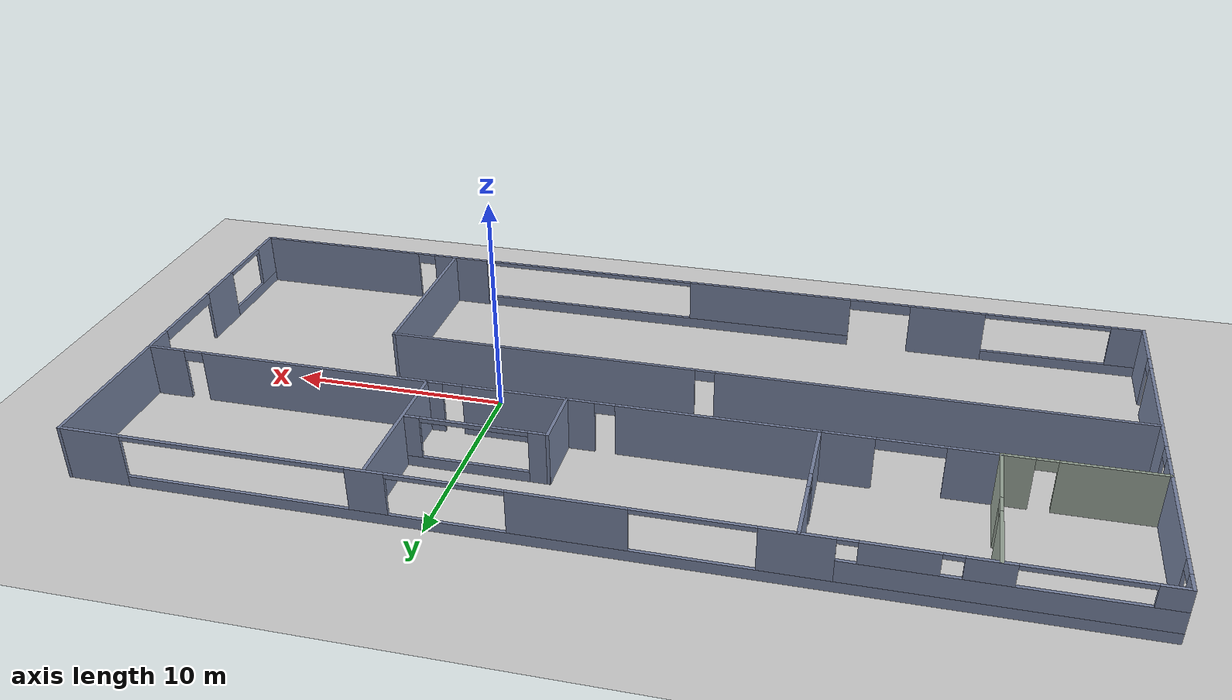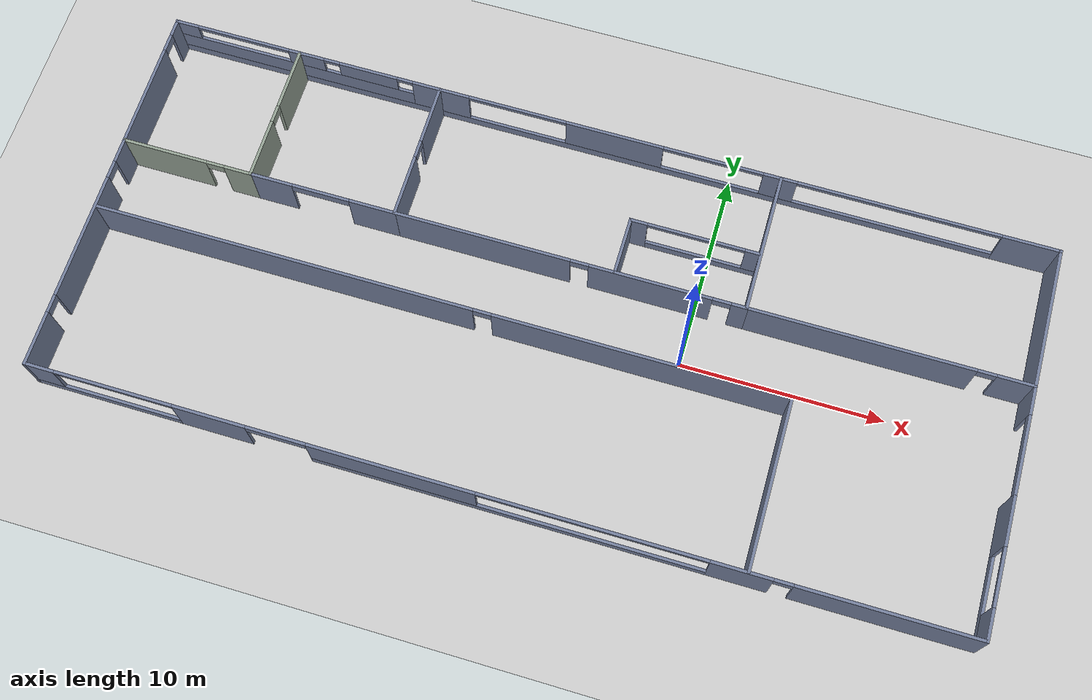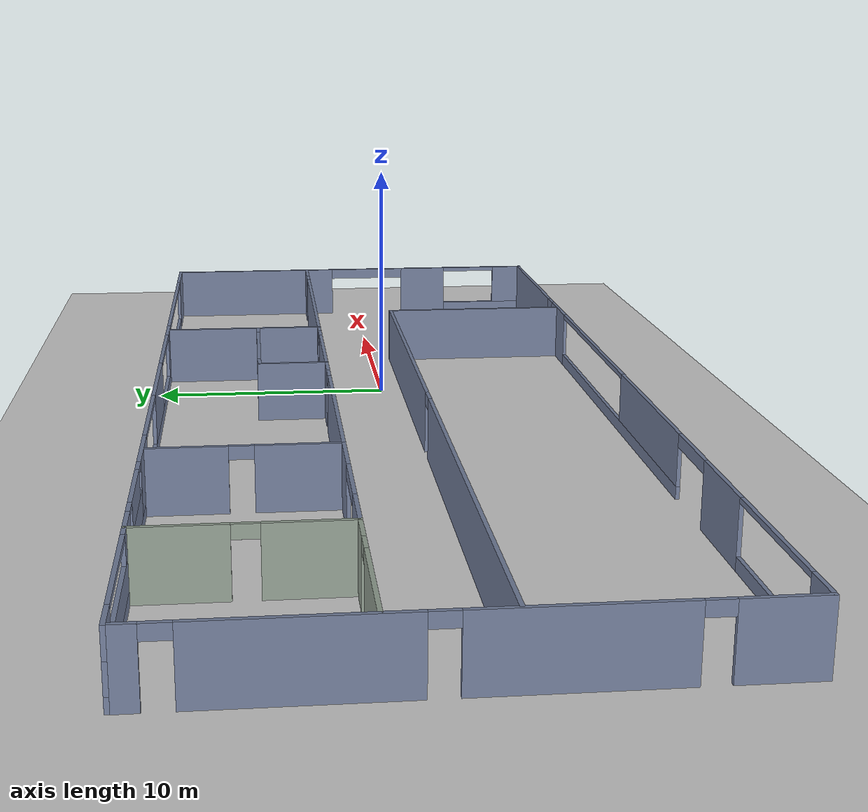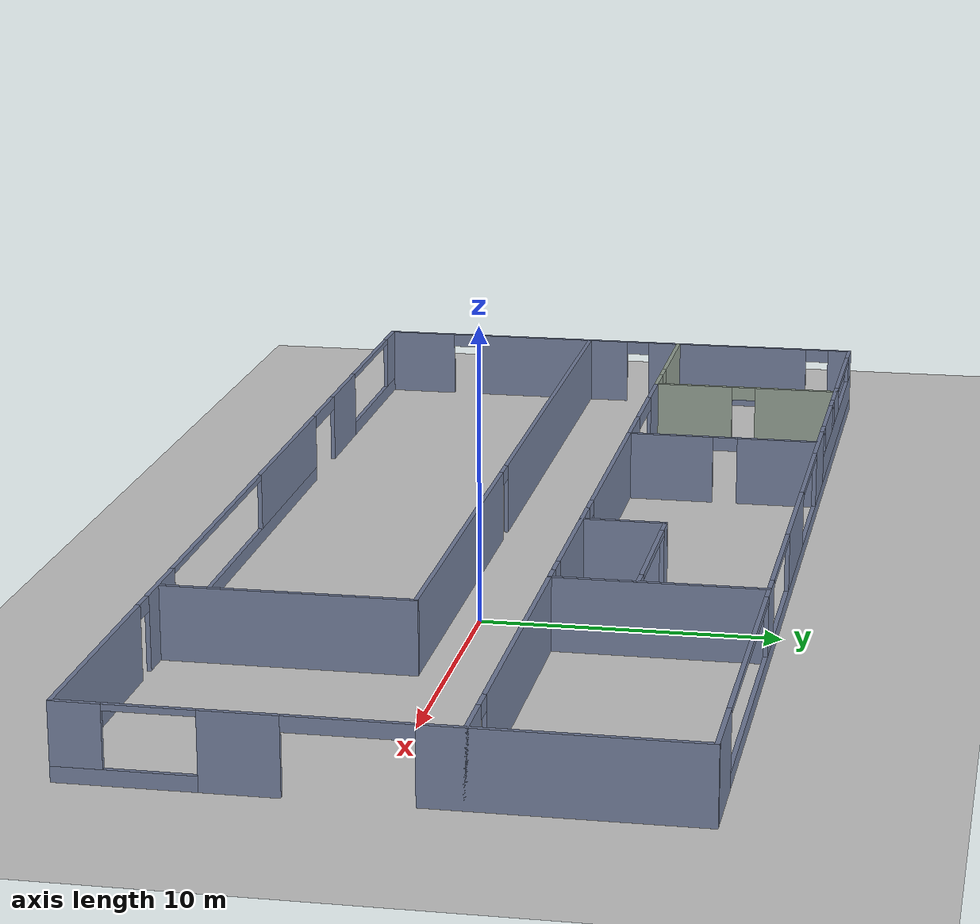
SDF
<sdf version="1.6">
 <world name="default">
  <model name="ground_plane">
   <static>1</static>
   <link name="link">
    <collision name="collision">
     <geometry><plane><normal>0 0 1</normal><size>100 100</size></plane></geometry>
     <surface><friction><ode><mu>100</mu><mu2>50</mu2></ode></friction></surface>
    </collision>
    <visual name="visual">
     <cast_shadows>0</cast_shadows>
     <geometry><plane><normal>0 0 1</normal><size>100 100</size></plane></geometry>
     <material>
      <script><uri>file://media/materials/scripts/gazebo.material</uri><name>Gazebo/Grey</name></script>
     </material>
    </visual>
   </link>
  </model>
  <model name="RnDBuilding">
   <pose>-6.4316 0.205557 0 0 -0 0</pose>
   <link name="Wall_0">
    <pose>22.425 0 0 0 0 -1.5708</pose>
    <visual name="Wall_0_Visual_0">
     <pose>-5.35844 0 1.25 0 -0 0</pose>
     <geometry><box><size>8.53312 0.15 2.5</size></box></geometry>
     <material>
      <script><uri>file://media/materials/scripts/gazebo.material</uri><name>Gazebo/Grey</name></script>
      <ambient>0.45098 0.498039 0.611765 1</ambient>
     </material>
     <meta><layer>0</layer></meta>
    </visual>
    <collision name="Wall_0_Collision_0">
     <geometry><box><size>8.53312 0.15 2.5</size></box></geometry>
     <pose>-5.35844 0 1.25 0 -0 0</pose>
    </collision>
    <visual name="Wall_0_Visual_1">
     <pose>4.02226 0 1.25 0 -0 0</pose>
     <geometry><box><size>2.42827 0.15 2.5</size></box></geometry>
     <material>
      <script><uri>file://media/materials/scripts/gazebo.material</uri><name>Gazebo/Grey</name></script>
      <ambient>0.45098 0.498039 0.611765 1</ambient>
     </material>
     <meta><layer>0</layer></meta>
    </visual>
    <collision name="Wall_0_Collision_1">
     <geometry><box><size>2.42827 0.15 2.5</size></box></geometry>
     <pose>4.02226 0 1.25 0 -0 0</pose>
    </collision>
    <visual name="Wall_0_Visual_2">
     <pose>7.4307 0 0.25 0 -0 0</pose>
     <geometry><box><size>4.38861 0.15 0.5</size></box></geometry>
     <material>
      <script><uri>file://media/materials/scripts/gazebo.material</uri><name>Gazebo/Grey</name></script>
      <ambient>0.45098 0.498039 0.611765 1</ambient>
     </material>
     <meta><layer>0</layer></meta>
    </visual>
    <collision name="Wall_0_Collision_2">
     <geometry><box><size>4.38861 0.15 0.5</size></box></geometry>
     <pose>7.4307 0 0.25 0 -0 0</pose>
    </collision>
    <visual name="Wall_0_Visual_3">
     <pose>8.8307 0 1.5 0 -0 0</pose>
     <geometry><box><size>1.58861 0.15 2</size></box></geometry>
     <material>
      <script><uri>file://media/materials/scripts/gazebo.material</uri><name>Gazebo/Grey</name></script>
      <ambient>0.45098 0.498039 0.611765 1</ambient>
     </material>
     <meta><layer>0</layer></meta>
    </visual>
    <collision name="Wall_0_Collision_3">
     <geometry><box><size>1.58861 0.15 2</size></box></geometry>
     <pose>8.8307 0 1.5 0 -0 0</pose>
    </collision>
    <visual name="Wall_0_Visual_4">
     <pose>0.858122 0 2.25 0 -0 0</pose>
     <geometry><box><size>3.9 0.15 0.5</size></box></geometry>
     <material>
      <script><uri>file://media/materials/scripts/gazebo.material</uri><name>Gazebo/Grey</name></script>
      <ambient>0.45098 0.498039 0.611765 1</ambient>
     </material>
     <meta><layer>0</layer></meta>
    </visual>
    <collision name="Wall_0_Collision_4">
     <geometry><box><size>3.9 0.15 0.5</size></box></geometry>
     <pose>0.858122 0 2.25 0 -0 0</pose>
    </collision>
    <visual name="Wall_0_Visual_5">
     <pose>6.63639 0 2.4 0 -0 0</pose>
     <geometry><box><size>2.8 0.15 0.2</size></box></geometry>
     <material>
      <script><uri>file://media/materials/scripts/gazebo.material</uri><name>Gazebo/Grey</name></script>
      <ambient>0.45098 0.498039 0.611765 1</ambient>
     </material>
     <meta><layer>0</layer></meta>
    </visual>
    <collision name="Wall_0_Collision_5">
     <geometry><box><size>2.8 0.15 0.2</size></box></geometry>
     <pose>6.63639 0 2.4 0 -0 0</pose>
    </collision>
   </link>
   <link name="Wall_1">
    <pose>0 -9.55 0 0 -0 3.14159</pose>
    <visual name="Wall_1_Visual_0">
     <pose>-18.1979 0 1.25 0 -0 0</pose>
     <geometry><box><size>8.60412 0.15 2.5</size></box></geometry>
     <material>
      <script><uri>file://media/materials/scripts/gazebo.material</uri><name>Gazebo/Grey</name></script>
      <ambient>0.45098 0.498039 0.611765 1</ambient>
     </material>
     <meta><layer>0</layer></meta>
    </visual>
    <collision name="Wall_1_Collision_0">
     <geometry><box><size>8.60412 0.15 2.5</size></box></geometry>
     <pose>-18.1979 0 1.25 0 -0 0</pose>
    </collision>
    <visual name="Wall_1_Visual_1">
     <pose>-11.5611 0 1.25 0 -0 0</pose>
     <geometry><box><size>2.86961 0.15 2.5</size></box></geometry>
     <material>
      <script><uri>file://media/materials/scripts/gazebo.material</uri><name>Gazebo/Grey</name></script>
      <ambient>0.45098 0.498039 0.611765 1</ambient>
     </material>
     <meta><layer>0</layer></meta>
    </visual>
    <collision name="Wall_1_Collision_1">
     <geometry><box><size>2.86961 0.15 2.5</size></box></geometry>
     <pose>-11.5611 0 1.25 0 -0 0</pose>
    </collision>
    <visual name="Wall_1_Visual_2">
     <pose>13.3816 0 1.25 0 -0 0</pose>
     <geometry><box><size>3.56837 0.15 2.5</size></box></geometry>
     <material>
      <script><uri>file://media/materials/scripts/gazebo.material</uri><name>Gazebo/Grey</name></script>
      <ambient>0.45098 0.498039 0.611765 1</ambient>
     </material>
     <meta><layer>0</layer></meta>
    </visual>
    <collision name="Wall_1_Collision_2">
     <geometry><box><size>3.56837 0.15 2.5</size></box></geometry>
     <pose>13.3816 0 1.25 0 -0 0</pose>
    </collision>
    <visual name="Wall_1_Visual_3">
     <pose>-0.714424 0 0.25 0 -0 0</pose>
     <geometry><box><size>18.8237 0.15 0.5</size></box></geometry>
     <material>
      <script><uri>file://media/materials/scripts/gazebo.material</uri><name>Gazebo/Grey</name></script>
      <ambient>0.45098 0.498039 0.611765 1</ambient>
     </material>
     <meta><layer>0</layer></meta>
    </visual>
    <collision name="Wall_1_Collision_3">
     <geometry><box><size>18.8237 0.15 0.5</size></box></geometry>
     <pose>-0.714424 0 0.25 0 -0 0</pose>
    </collision>
    <visual name="Wall_1_Visual_4">
     <pose>18.8329 0 0.25 0 -0 0</pose>
     <geometry><box><size>7.33421 0.15 0.5</size></box></geometry>
     <material>
      <script><uri>file://media/materials/scripts/gazebo.material</uri><name>Gazebo/Grey</name></script>
      <ambient>0.45098 0.498039 0.611765 1</ambient>
     </material>
     <meta><layer>0</layer></meta>
    </visual>
    <collision name="Wall_1_Collision_4">
     <geometry><box><size>7.33421 0.15 0.5</size></box></geometry>
     <pose>18.8329 0 0.25 0 -0 0</pose>
    </collision>
    <visual name="Wall_1_Visual_5">
     <pose>4.68558 0 1.5 0 -0 0</pose>
     <geometry><box><size>8.0237 0.15 2</size></box></geometry>
     <material>
      <script><uri>file://media/materials/scripts/gazebo.material</uri><name>Gazebo/Grey</name></script>
      <ambient>0.45098 0.498039 0.611765 1</ambient>
     </material>
     <meta><layer>0</layer></meta>
    </visual>
    <collision name="Wall_1_Collision_5">
     <geometry><box><size>8.0237 0.15 2</size></box></geometry>
     <pose>4.68558 0 1.5 0 -0 0</pose>
    </collision>
    <visual name="Wall_1_Visual_6">
     <pose>4.68558 0 1.5 0 -0 0</pose>
     <geometry><box><size>8.0237 0.15 2</size></box></geometry>
     <material>
      <script><uri>file://media/materials/scripts/gazebo.material</uri><name>Gazebo/Grey</name></script>
      <ambient>0.45098 0.498039 0.611765 1</ambient>
     </material>
     <meta><layer>0</layer></meta>
    </visual>
    <collision name="Wall_1_Collision_6">
     <geometry><box><size>8.0237 0.15 2</size></box></geometry>
     <pose>4.68558 0 1.5 0 -0 0</pose>
    </collision>
    <visual name="Wall_1_Visual_7">
     <pose>21.7329 0 1.5 0 -0 0</pose>
     <geometry><box><size>1.53421 0.15 2</size></box></geometry>
     <material>
      <script><uri>file://media/materials/scripts/gazebo.material</uri><name>Gazebo/Grey</name></script>
      <ambient>0.45098 0.498039 0.611765 1</ambient>
     </material>
     <meta><layer>0</layer></meta>
    </visual>
    <collision name="Wall_1_Collision_7">
     <geometry><box><size>1.53421 0.15 2</size></box></geometry>
     <pose>21.7329 0 1.5 0 -0 0</pose>
    </collision>
    <visual name="Wall_1_Visual_8">
     <pose>-13.4459 0 2.25 0 -0 0</pose>
     <geometry><box><size>0.9 0.15 0.5</size></box></geometry>
     <material>
      <script><uri>file://media/materials/scripts/gazebo.material</uri><name>Gazebo/Grey</name></script>
      <ambient>0.45098 0.498039 0.611765 1</ambient>
     </material>
     <meta><layer>0</layer></meta>
    </visual>
    <collision name="Wall_1_Collision_8">
     <geometry><box><size>0.9 0.15 0.5</size></box></geometry>
     <pose>-13.4459 0 2.25 0 -0 0</pose>
    </collision>
    <visual name="Wall_1_Visual_9">
     <pose>10.1474 0 2.25 0 -0 0</pose>
     <geometry><box><size>2.9 0.15 0.5</size></box></geometry>
     <material>
      <script><uri>file://media/materials/scripts/gazebo.material</uri><name>Gazebo/Grey</name></script>
      <ambient>0.45098 0.498039 0.611765 1</ambient>
     </material>
     <meta><layer>0</layer></meta>
    </visual>
    <collision name="Wall_1_Collision_9">
     <geometry><box><size>2.9 0.15 0.5</size></box></geometry>
     <pose>10.1474 0 2.25 0 -0 0</pose>
    </collision>
    <visual name="Wall_1_Visual_10">
     <pose>10.1474 0 2.25 0 -0 0</pose>
     <geometry><box><size>2.9 0.15 0.5</size></box></geometry>
     <material>
      <script><uri>file://media/materials/scripts/gazebo.material</uri><name>Gazebo/Grey</name></script>
      <ambient>0.45098 0.498039 0.611765 1</ambient>
     </material>
     <meta><layer>0</layer></meta>
    </visual>
    <collision name="Wall_1_Collision_10">
     <geometry><box><size>2.9 0.15 0.5</size></box></geometry>
     <pose>10.1474 0 2.25 0 -0 0</pose>
    </collision>
    <visual name="Wall_1_Visual_11">
     <pose>-4.72627 0 2.4 0 -0 0</pose>
     <geometry><box><size>10.8 0.15 0.2</size></box></geometry>
     <material>
      <script><uri>file://media/materials/scripts/gazebo.material</uri><name>Gazebo/Grey</name></script>
      <ambient>0.45098 0.498039 0.611765 1</ambient>
     </material>
     <meta><layer>0</layer></meta>
    </visual>
    <collision name="Wall_1_Collision_11">
     <geometry><box><size>10.8 0.15 0.2</size></box></geometry>
     <pose>-4.72627 0 2.4 0 -0 0</pose>
    </collision>
    <visual name="Wall_1_Visual_12">
     <pose>18.0658 0 2.4 0 -0 0</pose>
     <geometry><box><size>5.8 0.15 0.2</size></box></geometry>
     <material>
      <script><uri>file://media/materials/scripts/gazebo.material</uri><name>Gazebo/Grey</name></script>
      <ambient>0.45098 0.498039 0.611765 1</ambient>
     </material>
     <meta><layer>0</layer></meta>
    </visual>
    <collision name="Wall_1_Collision_12">
     <geometry><box><size>5.8 0.15 0.2</size></box></geometry>
     <pose>18.0658 0 2.4 0 -0 0</pose>
    </collision>
   </link>
   <link name="Wall_14">
    <collision name="Wall_14_Collision">
     <geometry><box><size>7.15 0.15 2.5</size></box></geometry>
     <pose>0 0 1.25 0 -0 0</pose>
    </collision>
    <visual name="Wall_14_Visual">
     <pose>0 0 1.25 0 -0 0</pose>
     <geometry><box><size>7.15 0.15 2.5</size></box></geometry>
     <material>
      <script><uri>file://media/materials/scripts/gazebo.material</uri><name>Gazebo/Grey</name></script>
      <ambient>0.45098 0.498039 0.611765 1</ambient>
     </material>
     <meta><layer>0</layer></meta>
    </visual>
    <pose>8.825 6.02489 0 0 -0 1.5708</pose>
   </link>
   <link name="Wall_16">
    <pose>0.15 2.52489 0 0 -0 3.14159</pose>
    <visual name="Wall_16_Visual_0">
     <pose>-8.3402 0 1.25 0 -0 0</pose>
     <geometry><box><size>0.819604 0.15 2.5</size></box></geometry>
     <material>
      <script><uri>file://media/materials/scripts/gazebo.material</uri><name>Gazebo/Grey</name></script>
      <ambient>0.45098 0.498039 0.611765 1</ambient>
     </material>
     <meta><layer>0</layer></meta>
    </visual>
    <collision name="Wall_16_Collision_0">
     <geometry><box><size>0.819604 0.15 2.5</size></box></geometry>
     <pose>-8.3402 0 1.25 0 -0 0</pose>
    </collision>
    <visual name="Wall_16_Visual_1">
     <pose>-4.01436 0 1.25 0 -0 0</pose>
     <geometry><box><size>6.03206 0.15 2.5</size></box></geometry>
     <material>
      <script><uri>file://media/materials/scripts/gazebo.material</uri><name>Gazebo/Grey</name></script>
      <ambient>0.45098 0.498039 0.611765 1</ambient>
     </material>
     <meta><layer>0</layer></meta>
    </visual>
    <collision name="Wall_16_Collision_1">
     <geometry><box><size>6.03206 0.15 2.5</size></box></geometry>
     <pose>-4.01436 0 1.25 0 -0 0</pose>
    </collision>
    <visual name="Wall_16_Visual_2">
     <pose>4.32583 0 1.25 0 -0 0</pose>
     <geometry><box><size>8.84833 0.15 2.5</size></box></geometry>
     <material>
      <script><uri>file://media/materials/scripts/gazebo.material</uri><name>Gazebo/Grey</name></script>
      <ambient>0.45098 0.498039 0.611765 1</ambient>
     </material>
     <meta><layer>0</layer></meta>
    </visual>
    <collision name="Wall_16_Collision_2">
     <geometry><box><size>8.84833 0.15 2.5</size></box></geometry>
     <pose>4.32583 0 1.25 0 -0 0</pose>
    </collision>
    <visual name="Wall_16_Visual_3">
     <pose>-7.4804 0 2.25 0 -0 0</pose>
     <geometry><box><size>0.9 0.15 0.5</size></box></geometry>
     <material>
      <script><uri>file://media/materials/scripts/gazebo.material</uri><name>Gazebo/Grey</name></script>
      <ambient>0.45098 0.498039 0.611765 1</ambient>
     </material>
     <meta><layer>0</layer></meta>
    </visual>
    <collision name="Wall_16_Collision_3">
     <geometry><box><size>0.9 0.15 0.5</size></box></geometry>
     <pose>-7.4804 0 2.25 0 -0 0</pose>
    </collision>
    <visual name="Wall_16_Visual_4">
     <pose>-0.548333 0 2.25 0 -0 0</pose>
     <geometry><box><size>0.9 0.15 0.5</size></box></geometry>
     <material>
      <script><uri>file://media/materials/scripts/gazebo.material</uri><name>Gazebo/Grey</name></script>
      <ambient>0.45098 0.498039 0.611765 1</ambient>
     </material>
     <meta><layer>0</layer></meta>
    </visual>
    <collision name="Wall_16_Collision_4">
     <geometry><box><size>0.9 0.15 0.5</size></box></geometry>
     <pose>-0.548333 0 2.25 0 -0 0</pose>
    </collision>
   </link>
   <link name="Wall_17">
    <pose>-8.525 6.02489 0 0 -0 1.5708</pose>
    <visual name="Wall_17_Visual_0">
     <pose>-1.97133 0 1.25 0 -0 0</pose>
     <geometry><box><size>3.20734 0.15 2.5</size></box></geometry>
     <material>
      <script><uri>file://media/materials/scripts/gazebo.material</uri><name>Gazebo/Grey</name></script>
      <ambient>0.45098 0.498039 0.611765 1</ambient>
     </material>
     <meta><layer>0</layer></meta>
    </visual>
    <collision name="Wall_17_Collision_0">
     <geometry><box><size>3.20734 0.15 2.5</size></box></geometry>
     <pose>-1.97133 0 1.25 0 -0 0</pose>
    </collision>
    <visual name="Wall_17_Visual_1">
     <pose>2.05367 0 1.25 0 -0 0</pose>
     <geometry><box><size>3.04266 0.15 2.5</size></box></geometry>
     <material>
      <script><uri>file://media/materials/scripts/gazebo.material</uri><name>Gazebo/Grey</name></script>
      <ambient>0.45098 0.498039 0.611765 1</ambient>
     </material>
     <meta><layer>0</layer></meta>
    </visual>
    <collision name="Wall_17_Collision_1">
     <geometry><box><size>3.04266 0.15 2.5</size></box></geometry>
     <pose>2.05367 0 1.25 0 -0 0</pose>
    </collision>
    <visual name="Wall_17_Visual_2">
     <pose>0.082341 0 2.25 0 -0 0</pose>
     <geometry><box><size>0.9 0.15 0.5</size></box></geometry>
     <material>
      <script><uri>file://media/materials/scripts/gazebo.material</uri><name>Gazebo/Grey</name></script>
      <ambient>0.45098 0.498039 0.611765 1</ambient>
     </material>
     <meta><layer>0</layer></meta>
    </visual>
    <collision name="Wall_17_Collision_2">
     <geometry><box><size>0.9 0.15 0.5</size></box></geometry>
     <pose>0.082341 0 2.25 0 -0 0</pose>
    </collision>
   </link>
   <link name="Wall_19">
    <collision name="Wall_19_Collision">
     <geometry><box><size>3 0.15 2.5</size></box></geometry>
     <pose>0 0 1.25 0 -0 0</pose>
    </collision>
    <visual name="Wall_19_Visual">
     <pose>0 0 1.25 0 -0 0</pose>
     <geometry><box><size>3 0.15 2.5</size></box></geometry>
     <material>
      <script><uri>file://media/materials/scripts/gazebo.material</uri><name>Gazebo/Grey</name></script>
      <ambient>0.45098 0.498039 0.611765 1</ambient>
     </material>
     <meta><layer>0</layer></meta>
    </visual>
    <pose>2.41972 3.94989 0 0 -0 1.5708</pose>
   </link>
   <link name="Wall_20">
    <pose>5.59472 5.37489 0 0 -0 0</pose>
    <visual name="Wall_20_Visual_0">
     <pose>-2.79096 0 1.25 0 -0 0</pose>
     <geometry><box><size>0.918074 0.15 2.5</size></box></geometry>
     <material>
      <script><uri>file://media/materials/scripts/gazebo.material</uri><name>Gazebo/Grey</name></script>
      <ambient>0.45098 0.498039 0.611765 1</ambient>
     </material>
     <meta><layer>0</layer></meta>
    </visual>
    <collision name="Wall_20_Collision_0">
     <geometry><box><size>0.918074 0.15 2.5</size></box></geometry>
     <pose>-2.79096 0 1.25 0 -0 0</pose>
    </collision>
    <visual name="Wall_20_Visual_1">
     <pose>0.459037 0 0.25 0 -0 0</pose>
     <geometry><box><size>5.58193 0.15 0.5</size></box></geometry>
     <material>
      <script><uri>file://media/materials/scripts/gazebo.material</uri><name>Gazebo/Grey</name></script>
      <ambient>0.45098 0.498039 0.611765 1</ambient>
     </material>
     <meta><layer>0</layer></meta>
    </visual>
    <collision name="Wall_20_Collision_1">
     <geometry><box><size>5.58193 0.15 0.5</size></box></geometry>
     <pose>0.459037 0 0.25 0 -0 0</pose>
    </collision>
    <visual name="Wall_20_Visual_2">
     <pose>2.85904 0 1.5 0 -0 0</pose>
     <geometry><box><size>0.781926 0.15 2</size></box></geometry>
     <material>
      <script><uri>file://media/materials/scripts/gazebo.material</uri><name>Gazebo/Grey</name></script>
      <ambient>0.45098 0.498039 0.611765 1</ambient>
     </material>
     <meta><layer>0</layer></meta>
    </visual>
    <collision name="Wall_20_Collision_2">
     <geometry><box><size>0.781926 0.15 2</size></box></geometry>
     <pose>2.85904 0 1.5 0 -0 0</pose>
    </collision>
    <visual name="Wall_20_Visual_3">
     <pose>0.068074 0 2.4 0 -0 0</pose>
     <geometry><box><size>4.8 0.15 0.2</size></box></geometry>
     <material>
      <script><uri>file://media/materials/scripts/gazebo.material</uri><name>Gazebo/Grey</name></script>
      <ambient>0.45098 0.498039 0.611765 1</ambient>
     </material>
     <meta><layer>0</layer></meta>
    </visual>
    <collision name="Wall_20_Collision_3">
     <geometry><box><size>4.8 0.15 0.2</size></box></geometry>
     <pose>0.068074 0 2.4 0 -0 0</pose>
    </collision>
   </link>
   <link name="Wall_22">
    <pose>-12.2 2.52489 0 0 -0 3.14159</pose>
    <visual name="Wall_22_Visual_0">
     <pose>-2.55908 0 1.25 0 -0 0</pose>
     <geometry><box><size>2.38184 0.15 2.5</size></box></geometry>
     <material>
      <script><uri>file://media/materials/scripts/gazebo.material</uri><name>Gazebo/Grey</name></script>
      <ambient>0.45098 0.498039 0.611765 1</ambient>
     </material>
     <meta><layer>0</layer></meta>
    </visual>
    <collision name="Wall_22_Collision_0">
     <geometry><box><size>2.38184 0.15 2.5</size></box></geometry>
     <pose>-2.55908 0 1.25 0 -0 0</pose>
    </collision>
    <visual name="Wall_22_Visual_1">
     <pose>2.64092 0 1.25 0 -0 0</pose>
     <geometry><box><size>2.21816 0.15 2.5</size></box></geometry>
     <material>
      <script><uri>file://media/materials/scripts/gazebo.material</uri><name>Gazebo/Grey</name></script>
      <ambient>0.45098 0.498039 0.611765 1</ambient>
     </material>
     <meta><layer>0</layer></meta>
    </visual>
    <collision name="Wall_22_Collision_1">
     <geometry><box><size>2.21816 0.15 2.5</size></box></geometry>
     <pose>2.64092 0 1.25 0 -0 0</pose>
    </collision>
    <visual name="Wall_22_Visual_2">
     <pose>0.081841 0 2.25 0 -0 0</pose>
     <geometry><box><size>2.9 0.15 0.5</size></box></geometry>
     <material>
      <script><uri>file://media/materials/scripts/gazebo.material</uri><name>Gazebo/Grey</name></script>
      <ambient>0.45098 0.498039 0.611765 1</ambient>
     </material>
     <meta><layer>0</layer></meta>
    </visual>
    <collision name="Wall_22_Collision_2">
     <geometry><box><size>2.9 0.15 0.5</size></box></geometry>
     <pose>0.081841 0 2.25 0 -0 0</pose>
    </collision>
   </link>
   <link name="Wall_23">
    <pose>-15.875 6.02489 0 0 -0 1.5708</pose>
    <visual name="Wall_23_Visual_0">
     <pose>-2.04112 0 1.25 0 -0 0</pose>
     <geometry><box><size>3.06777 0.15 2.5</size></box></geometry>
     <material>
      <script><uri>file://media/materials/scripts/gazebo.material</uri><name>Gazebo/Grey</name></script>
      <ambient>0.580392 0.631373 0.580392 1</ambient>
     </material>
     <meta><layer>0</layer></meta>
    </visual>
    <collision name="Wall_23_Collision_0">
     <geometry><box><size>3.06777 0.15 2.5</size></box></geometry>
     <pose>-2.04112 0 1.25 0 -0 0</pose>
    </collision>
    <visual name="Wall_23_Visual_1">
     <pose>1.98388 0 1.25 0 -0 0</pose>
     <geometry><box><size>3.18223 0.15 2.5</size></box></geometry>
     <material>
      <script><uri>file://media/materials/scripts/gazebo.material</uri><name>Gazebo/Grey</name></script>
      <ambient>0.580392 0.631373 0.580392 1</ambient>
     </material>
     <meta><layer>0</layer></meta>
    </visual>
    <collision name="Wall_23_Collision_1">
     <geometry><box><size>3.18223 0.15 2.5</size></box></geometry>
     <pose>1.98388 0 1.25 0 -0 0</pose>
    </collision>
    <visual name="Wall_23_Visual_2">
     <pose>-0.05723 0 2.25 0 -0 0</pose>
     <geometry><box><size>0.9 0.15 0.5</size></box></geometry>
     <material>
      <script><uri>file://media/materials/scripts/gazebo.material</uri><name>Gazebo/Grey</name></script>
      <ambient>0.580392 0.631373 0.580392 1</ambient>
     </material>
     <meta><layer>0</layer></meta>
    </visual>
    <collision name="Wall_23_Collision_2">
     <geometry><box><size>0.9 0.15 0.5</size></box></geometry>
     <pose>-0.05723 0 2.25 0 -0 0</pose>
    </collision>
   </link>
   <link name="Wall_25">
    <pose>-19.125 2.52489 0 0 -0 3.14159</pose>
    <visual name="Wall_25_Visual_0">
     <pose>-2.61069 0 1.25 0 -0 0</pose>
     <geometry><box><size>1.42861 0.15 2.5</size></box></geometry>
     <material>
      <script><uri>file://media/materials/scripts/gazebo.material</uri><name>Gazebo/Grey</name></script>
      <ambient>0.580392 0.631373 0.580392 1</ambient>
     </material>
     <meta><layer>0</layer></meta>
    </visual>
    <collision name="Wall_25_Collision_0">
     <geometry><box><size>1.42861 0.15 2.5</size></box></geometry>
     <pose>-2.61069 0 1.25 0 -0 0</pose>
    </collision>
    <visual name="Wall_25_Visual_1">
     <pose>1.16431 0 1.25 0 -0 0</pose>
     <geometry><box><size>4.32139 0.15 2.5</size></box></geometry>
     <material>
      <script><uri>file://media/materials/scripts/gazebo.material</uri><name>Gazebo/Grey</name></script>
      <ambient>0.580392 0.631373 0.580392 1</ambient>
     </material>
     <meta><layer>0</layer></meta>
    </visual>
    <collision name="Wall_25_Collision_1">
     <geometry><box><size>4.32139 0.15 2.5</size></box></geometry>
     <pose>1.16431 0 1.25 0 -0 0</pose>
    </collision>
    <visual name="Wall_25_Visual_2">
     <pose>-1.44639 0 2.25 0 -0 0</pose>
     <geometry><box><size>0.9 0.15 0.5</size></box></geometry>
     <material>
      <script><uri>file://media/materials/scripts/gazebo.material</uri><name>Gazebo/Grey</name></script>
      <ambient>0.580392 0.631373 0.580392 1</ambient>
     </material>
     <meta><layer>0</layer></meta>
    </visual>
    <collision name="Wall_25_Collision_2">
     <geometry><box><size>0.9 0.15 0.5</size></box></geometry>
     <pose>-1.44639 0 2.25 0 -0 0</pose>
    </collision>
   </link>
   <link name="Wall_27">
    <collision name="Wall_27_Collision">
     <geometry><box><size>8.5 0.15 2.5</size></box></geometry>
     <pose>0 0 1.25 0 -0 0</pose>
    </collision>
    <visual name="Wall_27_Visual">
     <pose>0 0 1.25 0 -0 0</pose>
     <geometry><box><size>8.5 0.15 2.5</size></box></geometry>
     <material>
      <script><uri>file://media/materials/scripts/gazebo.material</uri><name>Gazebo/Grey</name></script>
      <ambient>0.45098 0.498039 0.611765 1</ambient>
     </material>
     <meta><layer>0</layer></meta>
    </visual>
    <pose>11.8641 -5.3498 0 0 -0 1.5708</pose>
   </link>
   <link name="Wall_28">
    <pose>-5.23593 -1.1748 0 0 -0 3.14159</pose>
    <visual name="Wall_28_Visual_0">
     <pose>-9.94194 0 1.25 0 -0 0</pose>
     <geometry><box><size>14.4661 0.15 2.5</size></box></geometry>
     <material>
      <script><uri>file://media/materials/scripts/gazebo.material</uri><name>Gazebo/Grey</name></script>
      <ambient>0.45098 0.498039 0.611765 1</ambient>
     </material>
     <meta><layer>0</layer></meta>
    </visual>
    <collision name="Wall_28_Collision_0">
     <geometry><box><size>14.4661 0.15 2.5</size></box></geometry>
     <pose>-9.94194 0 1.25 0 -0 0</pose>
    </collision>
    <visual name="Wall_28_Visual_1">
     <pose>7.68306 0 1.25 0 -0 0</pose>
     <geometry><box><size>18.9839 0.15 2.5</size></box></geometry>
     <material>
      <script><uri>file://media/materials/scripts/gazebo.material</uri><name>Gazebo/Grey</name></script>
      <ambient>0.45098 0.498039 0.611765 1</ambient>
     </material>
     <meta><layer>0</layer></meta>
    </visual>
    <collision name="Wall_28_Collision_1">
     <geometry><box><size>18.9839 0.15 2.5</size></box></geometry>
     <pose>7.68306 0 1.25 0 -0 0</pose>
    </collision>
    <visual name="Wall_28_Visual_2">
     <pose>-2.25887 0 2.25 0 -0 0</pose>
     <geometry><box><size>0.9 0.15 0.5</size></box></geometry>
     <material>
      <script><uri>file://media/materials/scripts/gazebo.material</uri><name>Gazebo/Grey</name></script>
      <ambient>0.45098 0.498039 0.611765 1</ambient>
     </material>
     <meta><layer>0</layer></meta>
    </visual>
    <collision name="Wall_28_Collision_2">
     <geometry><box><size>0.9 0.15 0.5</size></box></geometry>
     <pose>-2.25887 0 2.25 0 -0 0</pose>
    </collision>
   </link>
   <link name="Wall_5">
    <pose>0 9.55 0 0 -0 3.14159</pose>
    <visual name="Wall_5_Visual_0">
     <pose>-21.0608 0 1.25 0 -0 0</pose>
     <geometry><box><size>2.87831 0.15 2.5</size></box></geometry>
     <material>
      <script><uri>file://media/materials/scripts/gazebo.material</uri><name>Gazebo/Grey</name></script>
      <ambient>0.45098 0.498039 0.611765 1</ambient>
     </material>
     <meta><layer>0</layer></meta>
    </visual>
    <collision name="Wall_5_Collision_0">
     <geometry><box><size>2.87831 0.15 2.5</size></box></geometry>
     <pose>-21.0608 0 1.25 0 -0 0</pose>
    </collision>
    <visual name="Wall_5_Visual_1">
     <pose>1.43915 0 0.25 0 -0 0</pose>
     <geometry><box><size>42.1217 0.15 0.5</size></box></geometry>
     <material>
      <script><uri>file://media/materials/scripts/gazebo.material</uri><name>Gazebo/Grey</name></script>
      <ambient>0.45098 0.498039 0.611765 1</ambient>
     </material>
     <meta><layer>0</layer></meta>
    </visual>
    <collision name="Wall_5_Collision_1">
     <geometry><box><size>42.1217 0.15 0.5</size></box></geometry>
     <pose>1.43915 0 0.25 0 -0 0</pose>
    </collision>
    <visual name="Wall_5_Visual_2">
     <pose>-8.78055 0 1.5 0 -0 0</pose>
     <geometry><box><size>1.68228 0.15 2</size></box></geometry>
     <material>
      <script><uri>file://media/materials/scripts/gazebo.material</uri><name>Gazebo/Grey</name></script>
      <ambient>0.45098 0.498039 0.611765 1</ambient>
     </material>
     <meta><layer>0</layer></meta>
    </visual>
    <collision name="Wall_5_Collision_2">
     <geometry><box><size>1.68228 0.15 2</size></box></geometry>
     <pose>-8.78055 0 1.5 0 -0 0</pose>
    </collision>
    <visual name="Wall_5_Visual_3">
     <pose>-0.470461 0 1.5 0 -0 0</pose>
     <geometry><box><size>4.93789 0.15 2</size></box></geometry>
     <material>
      <script><uri>file://media/materials/scripts/gazebo.material</uri><name>Gazebo/Grey</name></script>
      <ambient>0.45098 0.498039 0.611765 1</ambient>
     </material>
     <meta><layer>0</layer></meta>
    </visual>
    <collision name="Wall_5_Collision_3">
     <geometry><box><size>4.93789 0.15 2</size></box></geometry>
     <pose>-0.470461 0 1.5 0 -0 0</pose>
    </collision>
    <visual name="Wall_5_Visual_4">
     <pose>8.4703 0 1.5 0 -0 0</pose>
     <geometry><box><size>2.94362 0.15 2</size></box></geometry>
     <material>
      <script><uri>file://media/materials/scripts/gazebo.material</uri><name>Gazebo/Grey</name></script>
      <ambient>0.45098 0.498039 0.611765 1</ambient>
     </material>
     <meta><layer>0</layer></meta>
    </visual>
    <collision name="Wall_5_Collision_4">
     <geometry><box><size>2.94362 0.15 2</size></box></geometry>
     <pose>8.4703 0 1.5 0 -0 0</pose>
    </collision>
    <visual name="Wall_5_Visual_5">
     <pose>16.2211 0 1 0 -0 0</pose>
     <geometry><box><size>12.5579 0.15 1</size></box></geometry>
     <material>
      <script><uri>file://media/materials/scripts/gazebo.material</uri><name>Gazebo/Grey</name></script>
      <ambient>0.45098 0.498039 0.611765 1</ambient>
     </material>
     <meta><layer>0</layer></meta>
    </visual>
    <collision name="Wall_5_Collision_5">
     <geometry><box><size>12.5579 0.15 1</size></box></geometry>
     <pose>16.2211 0 1 0 -0 0</pose>
    </collision>
    <visual name="Wall_5_Visual_6">
     <pose>12.2637 0 2 0 -0 0</pose>
     <geometry><box><size>3.04328 0.15 1</size></box></geometry>
     <material>
      <script><uri>file://media/materials/scripts/gazebo.material</uri><name>Gazebo/Grey</name></script>
      <ambient>0.45098 0.498039 0.611765 1</ambient>
     </material>
     <meta><layer>0</layer></meta>
    </visual>
    <collision name="Wall_5_Collision_6">
     <geometry><box><size>3.04328 0.15 1</size></box></geometry>
     <pose>12.2637 0 2 0 -0 0</pose>
    </collision>
    <visual name="Wall_5_Visual_7">
     <pose>15.5269 0 2 0 -0 0</pose>
     <geometry><box><size>1.88294 0.15 1</size></box></geometry>
     <material>
      <script><uri>file://media/materials/scripts/gazebo.material</uri><name>Gazebo/Grey</name></script>
      <ambient>0.45098 0.498039 0.611765 1</ambient>
     </material>
     <meta><layer>0</layer></meta>
    </visual>
    <collision name="Wall_5_Collision_7">
     <geometry><box><size>1.88294 0.15 1</size></box></geometry>
     <pose>15.5269 0 2 0 -0 0</pose>
    </collision>
    <visual name="Wall_5_Visual_8">
     <pose>21.8842 0 2 0 -0 0</pose>
     <geometry><box><size>1.23167 0.15 1</size></box></geometry>
     <material>
      <script><uri>file://media/materials/scripts/gazebo.material</uri><name>Gazebo/Grey</name></script>
      <ambient>0.45098 0.498039 0.611765 1</ambient>
     </material>
     <meta><layer>0</layer></meta>
    </visual>
    <collision name="Wall_5_Collision_8">
     <geometry><box><size>1.23167 0.15 1</size></box></geometry>
     <pose>21.8842 0 2 0 -0 0</pose>
    </collision>
    <visual name="Wall_5_Visual_9">
     <pose>-14.6217 0 2.4 0 -0 0</pose>
     <geometry><box><size>10 0.15 0.2</size></box></geometry>
     <material>
      <script><uri>file://media/materials/scripts/gazebo.material</uri><name>Gazebo/Grey</name></script>
      <ambient>0.45098 0.498039 0.611765 1</ambient>
     </material>
     <meta><layer>0</layer></meta>
    </visual>
    <collision name="Wall_5_Collision_9">
     <geometry><box><size>10 0.15 0.2</size></box></geometry>
     <pose>-14.6217 0 2.4 0 -0 0</pose>
    </collision>
    <visual name="Wall_5_Visual_10">
     <pose>-5.43941 0 2.4 0 -0 0</pose>
     <geometry><box><size>5 0.15 0.2</size></box></geometry>
     <material>
      <script><uri>file://media/materials/scripts/gazebo.material</uri><name>Gazebo/Grey</name></script>
      <ambient>0.45098 0.498039 0.611765 1</ambient>
     </material>
     <meta><layer>0</layer></meta>
    </visual>
    <collision name="Wall_5_Collision_10">
     <geometry><box><size>5 0.15 0.2</size></box></geometry>
     <pose>-5.43941 0 2.4 0 -0 0</pose>
    </collision>
    <visual name="Wall_5_Visual_11">
     <pose>4.49848 0 2.4 0 -0 0</pose>
     <geometry><box><size>5 0.15 0.2</size></box></geometry>
     <material>
      <script><uri>file://media/materials/scripts/gazebo.material</uri><name>Gazebo/Grey</name></script>
      <ambient>0.45098 0.498039 0.611765 1</ambient>
     </material>
     <meta><layer>0</layer></meta>
    </visual>
    <collision name="Wall_5_Collision_11">
     <geometry><box><size>5 0.15 0.2</size></box></geometry>
     <pose>4.49848 0 2.4 0 -0 0</pose>
    </collision>
    <visual name="Wall_5_Visual_12">
     <pose>10.3421 0 2.4 0 -0 0</pose>
     <geometry><box><size>0.8 0.15 0.2</size></box></geometry>
     <material>
      <script><uri>file://media/materials/scripts/gazebo.material</uri><name>Gazebo/Grey</name></script>
      <ambient>0.45098 0.498039 0.611765 1</ambient>
     </material>
     <meta><layer>0</layer></meta>
    </visual>
    <collision name="Wall_5_Collision_12">
     <geometry><box><size>0.8 0.15 0.2</size></box></geometry>
     <pose>10.3421 0 2.4 0 -0 0</pose>
    </collision>
    <visual name="Wall_5_Visual_13">
     <pose>14.1854 0 2.4 0 -0 0</pose>
     <geometry><box><size>0.8 0.15 0.2</size></box></geometry>
     <material>
      <script><uri>file://media/materials/scripts/gazebo.material</uri><name>Gazebo/Grey</name></script>
      <ambient>0.45098 0.498039 0.611765 1</ambient>
     </material>
     <meta><layer>0</layer></meta>
    </visual>
    <collision name="Wall_5_Collision_13">
     <geometry><box><size>0.8 0.15 0.2</size></box></geometry>
     <pose>14.1854 0 2.4 0 -0 0</pose>
    </collision>
    <visual name="Wall_5_Visual_14">
     <pose>18.8683 0 2.4 0 -0 0</pose>
     <geometry><box><size>4.8 0.15 0.2</size></box></geometry>
     <material>
      <script><uri>file://media/materials/scripts/gazebo.material</uri><name>Gazebo/Grey</name></script>
      <ambient>0.45098 0.498039 0.611765 1</ambient>
     </material>
     <meta><layer>0</layer></meta>
    </visual>
    <collision name="Wall_5_Collision_14">
     <geometry><box><size>4.8 0.15 0.2</size></box></geometry>
     <pose>18.8683 0 2.4 0 -0 0</pose>
    </collision>
   </link>
   <link name="Wall_6">
    <pose>-22.425 0 0 0 0 -1.5708</pose>
    <visual name="Wall_6_Visual_0">
     <pose>-9.16117 0 1.25 0 -0 0</pose>
     <geometry><box><size>0.92767 0.15 2.5</size></box></geometry>
     <material>
      <script><uri>file://media/materials/scripts/gazebo.material</uri><name>Gazebo/Grey</name></script>
      <ambient>0.45098 0.498039 0.611765 1</ambient>
     </material>
     <meta><layer>0</layer></meta>
    </visual>
    <collision name="Wall_6_Collision_0">
     <geometry><box><size>0.92767 0.15 2.5</size></box></geometry>
     <pose>-9.16117 0 1.25 0 -0 0</pose>
    </collision>
    <visual name="Wall_6_Visual_1">
     <pose>-4.54868 0 1.25 0 -0 0</pose>
     <geometry><box><size>6.4973 0.15 2.5</size></box></geometry>
     <material>
      <script><uri>file://media/materials/scripts/gazebo.material</uri><name>Gazebo/Grey</name></script>
      <ambient>0.45098 0.498039 0.611765 1</ambient>
     </material>
     <meta><layer>0</layer></meta>
    </visual>
    <collision name="Wall_6_Collision_1">
     <geometry><box><size>6.4973 0.15 2.5</size></box></geometry>
     <pose>-4.54868 0 1.25 0 -0 0</pose>
    </collision>
    <visual name="Wall_6_Visual_2">
     <pose>2.8021 0 1.25 0 -0 0</pose>
     <geometry><box><size>6.40425 0.15 2.5</size></box></geometry>
     <material>
      <script><uri>file://media/materials/scripts/gazebo.material</uri><name>Gazebo/Grey</name></script>
      <ambient>0.45098 0.498039 0.611765 1</ambient>
     </material>
     <meta><layer>0</layer></meta>
    </visual>
    <collision name="Wall_6_Collision_2">
     <geometry><box><size>6.40425 0.15 2.5</size></box></geometry>
     <pose>2.8021 0 1.25 0 -0 0</pose>
    </collision>
    <visual name="Wall_6_Visual_3">
     <pose>8.26461 0 1.25 0 -0 0</pose>
     <geometry><box><size>2.72077 0.15 2.5</size></box></geometry>
     <material>
      <script><uri>file://media/materials/scripts/gazebo.material</uri><name>Gazebo/Grey</name></script>
      <ambient>0.45098 0.498039 0.611765 1</ambient>
     </material>
     <meta><layer>0</layer></meta>
    </visual>
    <collision name="Wall_6_Collision_3">
     <geometry><box><size>2.72077 0.15 2.5</size></box></geometry>
     <pose>8.26461 0 1.25 0 -0 0</pose>
    </collision>
    <visual name="Wall_6_Visual_4">
     <pose>-8.24733 0 2.25 0 -0 0</pose>
     <geometry><box><size>0.9 0.15 0.5</size></box></geometry>
     <material>
      <script><uri>file://media/materials/scripts/gazebo.material</uri><name>Gazebo/Grey</name></script>
      <ambient>0.45098 0.498039 0.611765 1</ambient>
     </material>
     <meta><layer>0</layer></meta>
    </visual>
    <collision name="Wall_6_Collision_4">
     <geometry><box><size>0.9 0.15 0.5</size></box></geometry>
     <pose>-8.24733 0 2.25 0 -0 0</pose>
    </collision>
    <visual name="Wall_6_Visual_5">
     <pose>-0.850028 0 2.25 0 -0 0</pose>
     <geometry><box><size>0.9 0.15 0.5</size></box></geometry>
     <material>
      <script><uri>file://media/materials/scripts/gazebo.material</uri><name>Gazebo/Grey</name></script>
      <ambient>0.45098 0.498039 0.611765 1</ambient>
     </material>
     <meta><layer>0</layer></meta>
    </visual>
    <collision name="Wall_6_Collision_5">
     <geometry><box><size>0.9 0.15 0.5</size></box></geometry>
     <pose>-0.850028 0 2.25 0 -0 0</pose>
    </collision>
    <visual name="Wall_6_Visual_6">
     <pose>6.45423 0 2.25 0 -0 0</pose>
     <geometry><box><size>0.9 0.15 0.5</size></box></geometry>
     <material>
      <script><uri>file://media/materials/scripts/gazebo.material</uri><name>Gazebo/Grey</name></script>
      <ambient>0.45098 0.498039 0.611765 1</ambient>
     </material>
     <meta><layer>0</layer></meta>
    </visual>
    <collision name="Wall_6_Collision_6">
     <geometry><box><size>0.9 0.15 0.5</size></box></geometry>
     <pose>6.45423 0 2.25 0 -0 0</pose>
    </collision>
   </link>
   <link name="Wall_9">
    <pose>15.625 2.52489 0 0 -0 3.14159</pose>
    <visual name="Wall_9_Visual_0">
     <pose>-5.94593 0 1.25 0 -0 0</pose>
     <geometry><box><size>1.85815 0.15 2.5</size></box></geometry>
     <material>
      <script><uri>file://media/materials/scripts/gazebo.material</uri><name>Gazebo/Grey</name></script>
      <ambient>0.45098 0.498039 0.611765 1</ambient>
     </material>
     <meta><layer>0</layer></meta>
    </visual>
    <collision name="Wall_9_Collision_0">
     <geometry><box><size>1.85815 0.15 2.5</size></box></geometry>
     <pose>-5.94593 0 1.25 0 -0 0</pose>
    </collision>
    <visual name="Wall_9_Visual_1">
     <pose>1.37907 0 1.25 0 -0 0</pose>
     <geometry><box><size>10.9919 0.15 2.5</size></box></geometry>
     <material>
      <script><uri>file://media/materials/scripts/gazebo.material</uri><name>Gazebo/Grey</name></script>
      <ambient>0.45098 0.498039 0.611765 1</ambient>
     </material>
     <meta><layer>0</layer></meta>
    </visual>
    <collision name="Wall_9_Collision_1">
     <geometry><box><size>10.9919 0.15 2.5</size></box></geometry>
     <pose>1.37907 0 1.25 0 -0 0</pose>
    </collision>
    <visual name="Wall_9_Visual_2">
     <pose>-4.56685 0 2.25 0 -0 0</pose>
     <geometry><box><size>0.9 0.15 0.5</size></box></geometry>
     <material>
      <script><uri>file://media/materials/scripts/gazebo.material</uri><name>Gazebo/Grey</name></script>
      <ambient>0.45098 0.498039 0.611765 1</ambient>
     </material>
     <meta><layer>0</layer></meta>
    </visual>
    <collision name="Wall_9_Collision_2">
     <geometry><box><size>0.9 0.15 0.5</size></box></geometry>
     <pose>-4.56685 0 2.25 0 -0 0</pose>
    </collision>
   </link>
   <static>1</static>
  </model>
 </world>
</sdf>
